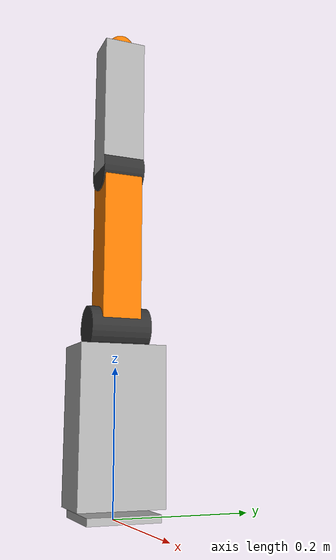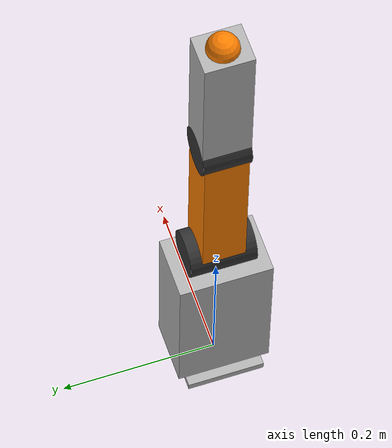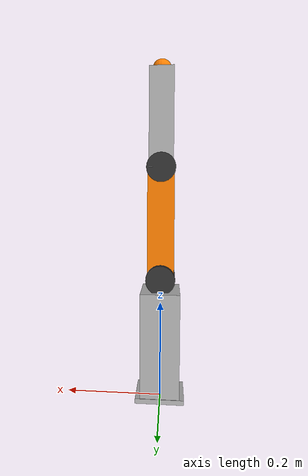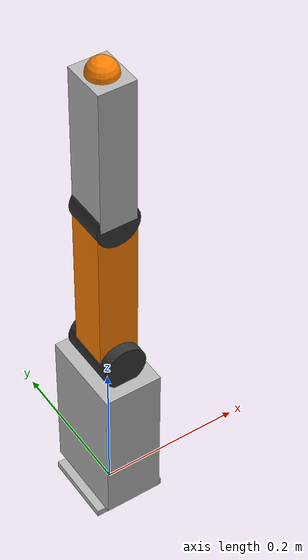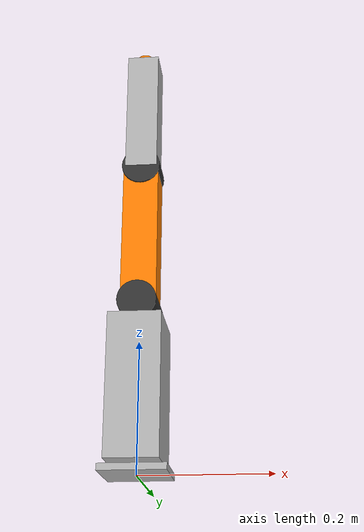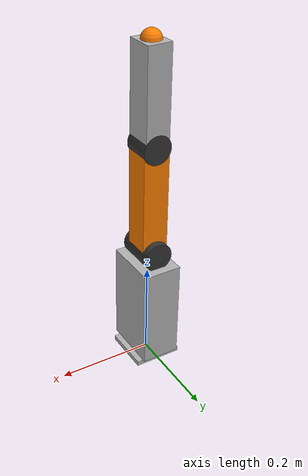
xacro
<?xml version="1.0"?>
<robot xmlns:xacro="http://www.ros.org/wiki/xacro" name="custom_robot_arm_rect">

  <material name="metal_grey"><color rgba="0.7 0.7 0.7 1"/></material>
  <material name="industrial_orange"><color rgba="1 0.5 0 1"/></material>
  <material name="joint_black"><color rgba="0.2 0.2 0.2 1"/></material>

  <link name="world"/>

  <joint name="fixed_base" type="fixed">
    <parent link="world"/>
    <child link="base_link"/>
    <origin xyz="0 0 0.005" rpy="0 0 0"/>
  </joint>

  <link name="base_link">
    <visual>
      <geometry><box size="0.1 0.1 0.01"/></geometry>
      <material name="metal_grey"/>
    </visual>
    <collision>
      <geometry><box size="0.1 0.1 0.01"/></geometry>
    </collision>
    <inertial>
      <mass value="0.1"/>
      <inertia ixx="0.001" ixy="0" ixz="0" iyy="0.001" iyz="0" izz="0.001"/>
    </inertial>
  </link>

  <joint name="joint1" type="revolute">
    <parent link="base_link"/>
    <child link="alt_kol"/>
    <origin xyz="0 0 0.01" rpy="0 0 0"/>
    <axis xyz="0 0 1"/>
    <limit lower="-3.14" upper="3.14" effort="5000" velocity="10.0"/>
    <dynamics damping="0.1" friction="0.1"/>
  </joint>

  <link name="alt_kol">
    <inertial>
      <origin xyz="0 0 0.1075" rpy="0 0 0"/>
      <mass value="1.0"/>
      <inertia ixx="0.01" ixy="0.0" ixz="0.0" iyy="0.01" iyz="0.0" izz="0.01"/>
    </inertial>
    <visual>
      <origin xyz="0 0 0.1075" rpy="0 0 0"/>
      <geometry><box size="0.08 0.12 0.215"/></geometry>
      <material name="metal_grey"/>
    </visual>
    <collision>
      <origin xyz="0 0 0.1075" rpy="0 0 0"/>
      <geometry><box size="0.08 0.12 0.215"/></geometry>
    </collision>
  </link>

  <joint name="joint2" type="revolute">
    <parent link="alt_kol"/>
    <child link="orta_kol"/>
    <origin xyz="0 0 0.24" rpy="0 0 0"/>
    <axis xyz="0 1 0"/>
    <limit lower="-1.57" upper="1.57" effort="5000" velocity="10.0"/>
    <dynamics damping="0.1" friction="0.1"/>
  </joint>

  <link name="orta_kol">
    <inertial>
      <origin xyz="0 0 0.115" rpy="0 0 0"/>
      <mass value="0.8"/>
      <inertia ixx="0.01" ixy="0.0" ixz="0.0" iyy="0.01" iyz="0.0" izz="0.01"/>
    </inertial>
    <visual>
      <origin xyz="0 0 0" rpy="1.57 0 0"/>
      <geometry><cylinder radius="0.03" length="0.085"/></geometry>
      <material name="joint_black"/>
    </visual>
    <visual>
      <origin xyz="0 0 0.115" rpy="0 0 0"/>
      <geometry><box size="0.055 0.055 0.23"/></geometry>
      <material name="industrial_orange"/>
    </visual>
    <collision>
      <origin xyz="0 0 0.115" rpy="0 0 0"/>
      <geometry><box size="0.055 0.055 0.23"/></geometry>
    </collision>
  </link>

  <joint name="joint3" type="revolute">
    <parent link="orta_kol"/>
    <child link="ust_kol"/>
    <origin xyz="0 0 0.23" rpy="0 0 0"/>
    <axis xyz="0 1 0"/>
    <limit lower="-1.57" upper="2.09" effort="5000" velocity="10.0"/>
    <dynamics damping="0.1" friction="0.1"/>
  </joint>

  <link name="ust_kol">
    <inertial>
      <origin xyz="0 0 0.10" rpy="0 0 0"/>
      <mass value="0.6"/>
      <inertia ixx="0.01" ixy="0.0" ixz="0.0" iyy="0.01" iyz="0.0" izz="0.01"/>
    </inertial>
    <visual>
      <origin xyz="0 0 0" rpy="1.57 0 0"/>
      <geometry><cylinder radius="0.03" length="0.06"/></geometry>
      <material name="joint_black"/>
    </visual>
    <visual>
      <origin xyz="0 0 0.10" rpy="0 0 0"/>
      <geometry><box size="0.05 0.06 0.20"/></geometry>
      <material name="metal_grey"/>
    </visual>
    <collision>
      <origin xyz="0 0 0.10" rpy="0 0 0"/>
      <geometry><box size="0.05 0.06 0.20"/></geometry>
    </collision>
  </link>

  <joint name="joint_ee" type="fixed">
    <parent link="ust_kol"/>
    <child link="end_effector_point"/>
    <origin xyz="0 0 0.20" rpy="0 0 0"/>
  </joint>

  <link name="end_effector_point">
    <inertial>
      <mass value="0.01"/>
      <inertia ixx="0.001" ixy="0.0" ixz="0.0" iyy="0.001" iyz="0.0" izz="0.001"/>
    </inertial>
    <visual>
      <geometry><sphere radius="0.02"/></geometry>
      <material name="industrial_orange"/>
    </visual>
    <collision>
      <geometry><sphere radius="0.02"/></geometry>
    </collision>
  </link>

  <gazebo reference="base_link"><material>Gazebo/Grey</material></gazebo>
  <gazebo reference="alt_kol"><material>Gazebo/Grey</material></gazebo>
  <gazebo reference="orta_kol"><material>Gazebo/Orange</material></gazebo>
  <gazebo reference="ust_kol"><material>Gazebo/Grey</material></gazebo>
  <gazebo reference="end_effector_point"><material>Gazebo/Red</material></gazebo>

  <ros2_control name="GazeboSystem" type="system">
    <hardware>
      <plugin>gazebo_ros2_control/GazeboSystem</plugin>
    </hardware>

    <joint name="joint1">
      <command_interface name="position"><param name="min">-3.14</param><param name="max">3.14</param></command_interface>
      <state_interface name="position"/><state_interface name="velocity"/>
    </joint>
    <joint name="joint2">
      <command_interface name="position"><param name="min">-1.57</param><param name="max">1.57</param></command_interface>
      <state_interface name="position"/><state_interface name="velocity"/>
    </joint>
    <joint name="joint3">
      <command_interface name="position"><param name="min">-1.57</param><param name="max">2.09</param></command_interface>
      <state_interface name="position"/><state_interface name="velocity"/>
    </joint>
  </ros2_control>

  <gazebo>
    <plugin filename="libgazebo_ros2_control.so" name="gazebo_ros2_control">
      <parameters>$(find my_custom_arm_moveit_config)/config/ros2_controllers.yaml</parameters>
    </plugin>
  </gazebo>
</robot>
